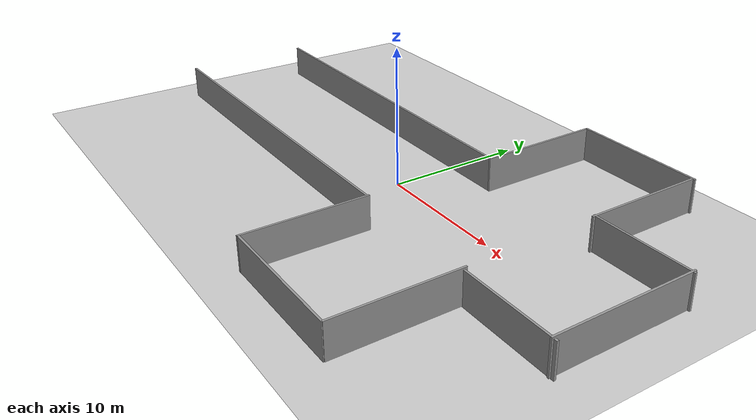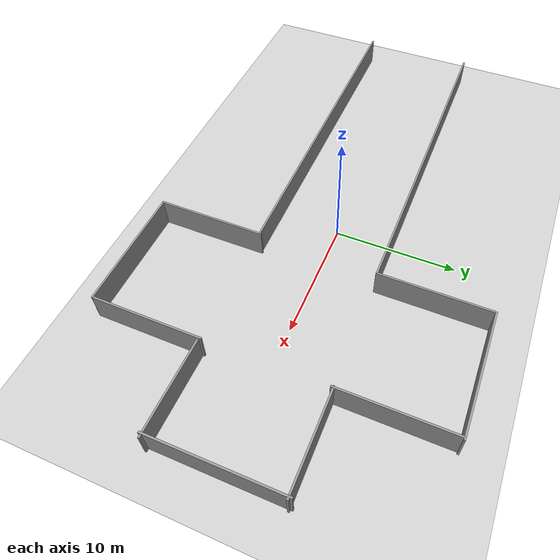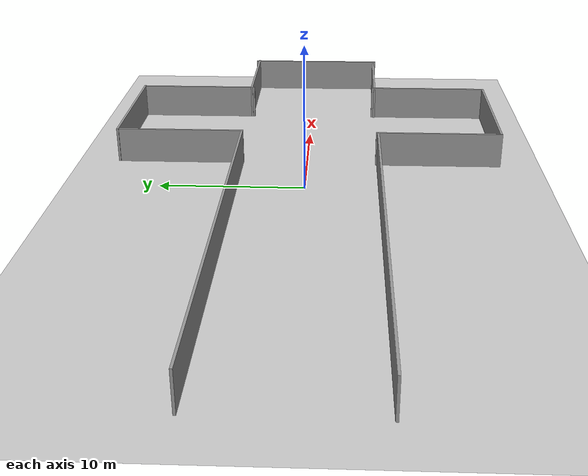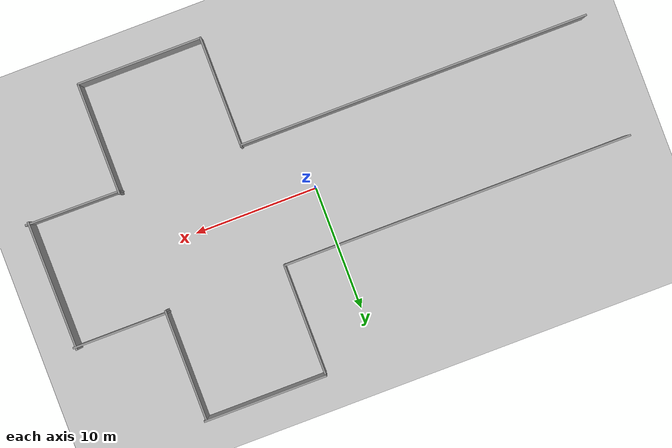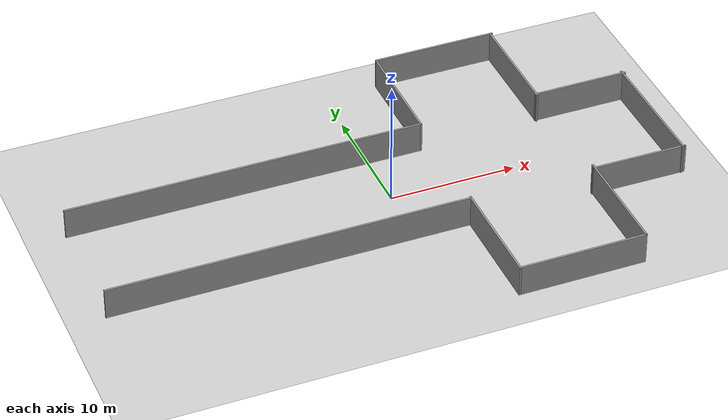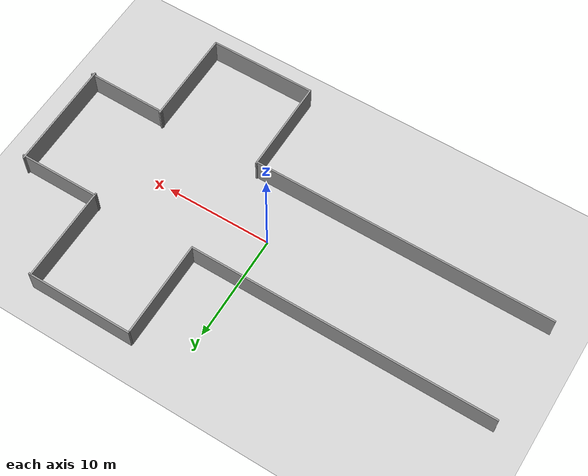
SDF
<sdf version="1.7">
 <world name="default">
  <light name="sun" type="directional">
   <pose>0 0 10 0 -0 0</pose>
   <diffuse>0.8 0.8 0.8 1</diffuse>
   <specular>0.2 0.2 0.2 1</specular>
   <attenuation>
    <range>1000</range>
    <constant>0.9</constant>
    <linear>0.01</linear>
    <quadratic>0.001</quadratic>
   </attenuation>
   <direction>-0.5 0.1 -0.9</direction>
   <spot><inner_angle>0</inner_angle><outer_angle>0</outer_angle><falloff>0</falloff></spot>
  </light>
  <model name="ground_plane">
   <static>1</static>
   <link name="link">
    <collision name="collision">
     <geometry><plane><normal>0 0 1</normal><size>100 100</size></plane></geometry>
     <surface><friction><ode><mu>100</mu><mu2>50</mu2></ode></friction></surface>
    </collision>
    <visual name="visual">
     <cast_shadows>0</cast_shadows>
     <geometry><plane><normal>0 0 1</normal><size>100 100</size></plane></geometry>
     <material>
      <script><uri>file://media/materials/scripts/gazebo.material</uri><name>Gazebo/Grey</name></script>
     </material>
    </visual>
   </link>
  </model>
  <gravity>0 0 -9.8</gravity>
  <magnetic_field>6e-06 2.3e-05 -4.2e-05</magnetic_field>
  <atmosphere type="adiabatic"/>
  <physics type="ode">
   <max_step_size>0.001</max_step_size>
   <real_time_factor>1</real_time_factor>
   <real_time_update_rate>1000</real_time_update_rate>
  </physics>
  <scene><ambient>0.4 0.4 0.4 1</ambient><background>0.7 0.7 0.7 1</background><shadows>1</shadows></scene>
  <spherical_coordinates>
   <surface_model>EARTH_WGS84</surface_model>
   <latitude_deg>0</latitude_deg>
   <longitude_deg>0</longitude_deg>
   <elevation>0</elevation>
   <heading_deg>0</heading_deg>
  </spherical_coordinates>
  <model name="T_shape">
   <link name="Wall_10">
    <pose>10.6566 11.3839 0 0 -0 0</pose>
    <visual name="Wall_10_Visual">
     <pose>0 0 1.25 0 -0 0</pose>
     <geometry><box><size>10 0.15 2.5</size></box></geometry>
     <material>
      <script><uri>file://media/materials/scripts/gazebo.material</uri><name>Gazebo/Grey</name></script>
      <ambient>1 1 1 1</ambient>
      <shader type="pixel"/>
     </material>
     <meta><layer>0</layer></meta>
    </visual>
    <collision name="Wall_10_Collision">
     <pose>0 0 1.25 0 -0 0</pose>
     <geometry><box><size>10 0.15 2.5</size></box></geometry>
     <surface>
      <friction>
       <ode><mu>1</mu><mu2>1</mu2><fdir1>0 0 0</fdir1><slip1>0</slip1><slip2>0</slip2></ode>
       <torsional>
        <coefficient>1</coefficient>
        <patch_radius>0</patch_radius>
        <surface_radius>0</surface_radius>
        <use_patch_radius>1</use_patch_radius>
        <ode><slip>0</slip></ode>
       </torsional>
      </friction>
      <bounce><restitution_coefficient>0</restitution_coefficient><threshold>1e+06</threshold></bounce>
      <contact>
       <collide_without_contact>0</collide_without_contact>
       <collide_without_contact_bitmask>1</collide_without_contact_bitmask>
       <collide_bitmask>1</collide_bitmask>
       <ode>
        <soft_cfm>0</soft_cfm>
        <soft_erp>0.2</soft_erp>
        <kp>1e+13</kp>
        <kd>1</kd>
        <max_vel>0.01</max_vel>
        <min_depth>0</min_depth>
       </ode>
       <bullet>
        <split_impulse>1</split_impulse>
        <split_impulse_penetration_threshold>-0.01</split_impulse_penetration_threshold>
        <soft_cfm>0</soft_cfm>
        <soft_erp>0.2</soft_erp>
        <kp>1e+13</kp>
        <kd>1</kd>
       </bullet>
      </contact>
     </surface>
    </collision>
   </link>
   <link name="Wall_10_clone">
    <pose>10.6299 -16.167 0 0 -0 0</pose>
    <visual name="Wall_10_Visual">
     <pose>0 0 1.25 0 -0 0</pose>
     <geometry><box><size>10 0.15 2.5</size></box></geometry>
     <material>
      <script><uri>file://media/materials/scripts/gazebo.material</uri><name>Gazebo/Grey</name></script>
      <ambient>1 1 1 1</ambient>
      <shader type="pixel"/>
     </material>
     <meta><layer>0</layer></meta>
    </visual>
    <collision name="Wall_10_Collision">
     <pose>0 0 1.25 0 -0 0</pose>
     <geometry><box><size>10 0.15 2.5</size></box></geometry>
     <surface>
      <friction>
       <ode><mu>1</mu><mu2>1</mu2><fdir1>0 0 0</fdir1><slip1>0</slip1><slip2>0</slip2></ode>
       <torsional>
        <coefficient>1</coefficient>
        <patch_radius>0</patch_radius>
        <surface_radius>0</surface_radius>
        <use_patch_radius>1</use_patch_radius>
        <ode><slip>0</slip></ode>
       </torsional>
      </friction>
      <bounce><restitution_coefficient>0</restitution_coefficient><threshold>1e+06</threshold></bounce>
      <contact>
       <collide_without_contact>0</collide_without_contact>
       <collide_without_contact_bitmask>1</collide_without_contact_bitmask>
       <collide_bitmask>1</collide_bitmask>
       <ode>
        <soft_cfm>0</soft_cfm>
        <soft_erp>0.2</soft_erp>
        <kp>1e+13</kp>
        <kd>1</kd>
        <max_vel>0.01</max_vel>
        <min_depth>0</min_depth>
       </ode>
       <bullet>
        <split_impulse>1</split_impulse>
        <split_impulse_penetration_threshold>-0.01</split_impulse_penetration_threshold>
        <soft_cfm>0</soft_cfm>
        <soft_erp>0.2</soft_erp>
        <kp>1e+13</kp>
        <kd>1</kd>
       </bullet>
      </contact>
     </surface>
    </collision>
   </link>
   <link name="Wall_11">
    <pose>15.4566 6.8718 0 0 -0 1.5708</pose>
    <inertial>
     <mass>5.7375</mass>
     <inertia><ixx>2.99904</ixx><ixy>0</ixy><ixz>0</ixz><iyy>41.7164</iyy><iyz>0</iyz><izz>38.7389</izz></inertia>
    </inertial>
    <visual name="Wall_11_Visual">
     <pose>0 0 1.25 0 -0 0</pose>
     <geometry><box><size>9 0.15 2.5</size></box></geometry>
     <material>
      <script><uri>file://media/materials/scripts/gazebo.material</uri><name>Gazebo/Grey</name></script>
      <ambient>1 1 1 1</ambient>
      <shader type="pixel"><normal_map>__default__</normal_map></shader>
     </material>
     <meta><layer>0</layer></meta>
    </visual>
    <collision name="Wall_11_Collision">
     <pose>0 0 1.25 0 -0 0</pose>
     <geometry><box><size>9 0.15 2.5</size></box></geometry>
     <surface>
      <friction>
       <ode><mu>1</mu><mu2>1</mu2><fdir1>0 0 0</fdir1><slip1>0</slip1><slip2>0</slip2></ode>
       <torsional>
        <coefficient>1</coefficient>
        <patch_radius>0</patch_radius>
        <surface_radius>0</surface_radius>
        <use_patch_radius>1</use_patch_radius>
        <ode><slip>0</slip></ode>
       </torsional>
      </friction>
      <bounce><restitution_coefficient>0</restitution_coefficient><threshold>1e+06</threshold></bounce>
      <contact>
       <collide_without_contact>0</collide_without_contact>
       <collide_without_contact_bitmask>1</collide_without_contact_bitmask>
       <collide_bitmask>1</collide_bitmask>
       <ode>
        <soft_cfm>0</soft_cfm>
        <soft_erp>0.2</soft_erp>
        <kp>1e+13</kp>
        <kd>1</kd>
        <max_vel>0.01</max_vel>
        <min_depth>0</min_depth>
       </ode>
       <bullet>
        <split_impulse>1</split_impulse>
        <split_impulse_penetration_threshold>-0.01</split_impulse_penetration_threshold>
        <soft_cfm>0</soft_cfm>
        <soft_erp>0.2</soft_erp>
        <kp>1e+13</kp>
        <kd>1</kd>
       </bullet>
      </contact>
     </surface>
    </collision>
   </link>
   <link name="Wall_11_clone">
    <pose>15.5901 -11.6787 0 0 -0 1.5708</pose>
    <inertial>
     <mass>5.7375</mass>
     <inertia><ixx>2.99904</ixx><ixy>0</ixy><ixz>0</ixz><iyy>41.7164</iyy><iyz>0</iyz><izz>38.7389</izz></inertia>
    </inertial>
    <visual name="Wall_11_Visual">
     <pose>0 0 1.25 0 -0 0</pose>
     <geometry><box><size>9 0.15 2.5</size></box></geometry>
     <material>
      <script><uri>file://media/materials/scripts/gazebo.material</uri><name>Gazebo/Grey</name></script>
      <ambient>1 1 1 1</ambient>
      <shader type="pixel"><normal_map>__default__</normal_map></shader>
     </material>
     <meta><layer>0</layer></meta>
    </visual>
    <collision name="Wall_11_Collision">
     <pose>0 0 1.25 0 -0 0</pose>
     <geometry><box><size>9 0.15 2.5</size></box></geometry>
     <surface>
      <friction>
       <ode><mu>1</mu><mu2>1</mu2><fdir1>0 0 0</fdir1><slip1>0</slip1><slip2>0</slip2></ode>
       <torsional>
        <coefficient>1</coefficient>
        <patch_radius>0</patch_radius>
        <surface_radius>0</surface_radius>
        <use_patch_radius>1</use_patch_radius>
        <ode><slip>0</slip></ode>
       </torsional>
      </friction>
      <bounce><restitution_coefficient>0</restitution_coefficient><threshold>1e+06</threshold></bounce>
      <contact>
       <collide_without_contact>0</collide_without_contact>
       <collide_without_contact_bitmask>1</collide_without_contact_bitmask>
       <collide_bitmask>1</collide_bitmask>
       <ode>
        <soft_cfm>0</soft_cfm>
        <soft_erp>0.2</soft_erp>
        <kp>1e+13</kp>
        <kd>1</kd>
        <max_vel>0.01</max_vel>
        <min_depth>0</min_depth>
       </ode>
       <bullet>
        <split_impulse>1</split_impulse>
        <split_impulse_penetration_threshold>-0.01</split_impulse_penetration_threshold>
        <soft_cfm>0</soft_cfm>
        <soft_erp>0.2</soft_erp>
        <kp>1e+13</kp>
        <kd>1</kd>
       </bullet>
      </contact>
     </surface>
    </collision>
   </link>
   <link name="Wall_12">
    <pose>19.1981 2.60037 0 0 -0 0</pose>
    <inertial>
     <inertia><ixx>1.96598</ixx><ixy>0</ixy><ixz>0</ixz><iyy>20.6154</iyy><iyz>0</iyz><izz>18.6635</izz></inertia>
     <mass>3.76114</mass>
    </inertial>
    <visual name="Wall_12_Visual">
     <pose>0 0 1.25 0 -0 0</pose>
     <geometry><box><size>7.71517 0.15 2.5</size></box></geometry>
     <material>
      <script><uri>file://media/materials/scripts/gazebo.material</uri><name>Gazebo/Grey</name></script>
      <ambient>1 1 1 1</ambient>
      <shader type="pixel"><normal_map>__default__</normal_map></shader>
     </material>
     <meta><layer>0</layer></meta>
    </visual>
    <collision name="Wall_12_Collision">
     <pose>0 0 1.25 0 -0 0</pose>
     <geometry><box><size>7.71517 0.15 2.5</size></box></geometry>
     <surface>
      <friction>
       <ode><mu>1</mu><mu2>1</mu2><fdir1>0 0 0</fdir1><slip1>0</slip1><slip2>0</slip2></ode>
       <torsional>
        <coefficient>1</coefficient>
        <patch_radius>0</patch_radius>
        <surface_radius>0</surface_radius>
        <use_patch_radius>1</use_patch_radius>
        <ode><slip>0</slip></ode>
       </torsional>
      </friction>
      <bounce><restitution_coefficient>0</restitution_coefficient><threshold>1e+06</threshold></bounce>
      <contact>
       <collide_without_contact>0</collide_without_contact>
       <collide_without_contact_bitmask>1</collide_without_contact_bitmask>
       <collide_bitmask>1</collide_bitmask>
       <ode>
        <soft_cfm>0</soft_cfm>
        <soft_erp>0.2</soft_erp>
        <kp>1e+13</kp>
        <kd>1</kd>
        <max_vel>0.01</max_vel>
        <min_depth>0</min_depth>
       </ode>
       <bullet>
        <split_impulse>1</split_impulse>
        <split_impulse_penetration_threshold>-0.01</split_impulse_penetration_threshold>
        <soft_cfm>0</soft_cfm>
        <soft_erp>0.2</soft_erp>
        <kp>1e+13</kp>
        <kd>1</kd>
       </bullet>
      </contact>
     </surface>
    </collision>
   </link>
   <link name="Wall_12_clone">
    <pose>22.8533 -2.40842 -0 0 0 -1.56581</pose>
    <inertial>
     <inertia><ixx>2.06304</ixx><ixy>0</ixy><ixz>0</ixz><iyy>38.4892</iyy><iyz>0</iyz><izz>36.441</izz></inertia>
     <mass>3.94684</mass>
    </inertial>
    <visual name="Wall_12_Visual">
     <pose>0 0 1.25 0 -0 0</pose>
     <geometry><box><size>10.5249 0.15 2.5</size></box></geometry>
     <material>
      <script><uri>file://media/materials/scripts/gazebo.material</uri><name>Gazebo/Grey</name></script>
      <ambient>1 1 1 1</ambient>
      <shader type="pixel"><normal_map>__default__</normal_map></shader>
     </material>
     <meta><layer>0</layer></meta>
    </visual>
    <collision name="Wall_12_Collision">
     <pose>0 0 1.25 0 -0 0</pose>
     <geometry><box><size>10.5249 0.15 2.5</size></box></geometry>
     <surface>
      <friction>
       <ode><mu>1</mu><mu2>1</mu2><fdir1>0 0 0</fdir1><slip1>0</slip1><slip2>0</slip2></ode>
       <torsional>
        <coefficient>1</coefficient>
        <patch_radius>0</patch_radius>
        <surface_radius>0</surface_radius>
        <use_patch_radius>1</use_patch_radius>
        <ode><slip>0</slip></ode>
       </torsional>
      </friction>
      <bounce><restitution_coefficient>0</restitution_coefficient><threshold>1e+06</threshold></bounce>
      <contact>
       <collide_without_contact>0</collide_without_contact>
       <collide_without_contact_bitmask>1</collide_without_contact_bitmask>
       <collide_bitmask>1</collide_bitmask>
       <ode>
        <soft_cfm>0</soft_cfm>
        <soft_erp>0.2</soft_erp>
        <kp>1e+13</kp>
        <kd>1</kd>
        <max_vel>0.01</max_vel>
        <min_depth>0</min_depth>
       </ode>
       <bullet>
        <split_impulse>1</split_impulse>
        <split_impulse_penetration_threshold>-0.01</split_impulse_penetration_threshold>
        <soft_cfm>0</soft_cfm>
        <soft_erp>0.2</soft_erp>
        <kp>1e+13</kp>
        <kd>1</kd>
       </bullet>
      </contact>
     </surface>
    </collision>
   </link>
   <link name="Wall_12_clone_0">
    <pose>19.333 -7.44807 -0.117967 0 0 -0.009063</pose>
    <inertial>
     <inertia><ixx>1.96598</ixx><ixy>0</ixy><ixz>0</ixz><iyy>20.6154</iyy><iyz>0</iyz><izz>18.6635</izz></inertia>
     <mass>3.76114</mass>
    </inertial>
    <visual name="Wall_12_Visual">
     <pose>0 0 1.25 0 -0 0</pose>
     <geometry><box><size>7.71517 0.15 2.5</size></box></geometry>
     <material>
      <script><uri>file://media/materials/scripts/gazebo.material</uri><name>Gazebo/Grey</name></script>
      <ambient>1 1 1 1</ambient>
      <shader type="pixel"><normal_map>__default__</normal_map></shader>
     </material>
     <meta><layer>0</layer></meta>
    </visual>
    <collision name="Wall_12_Collision">
     <pose>0 0 1.25 0 -0 0</pose>
     <geometry><box><size>7.71517 0.15 2.5</size></box></geometry>
     <surface>
      <friction>
       <ode><mu>1</mu><mu2>1</mu2><fdir1>0 0 0</fdir1><slip1>0</slip1><slip2>0</slip2></ode>
       <torsional>
        <coefficient>1</coefficient>
        <patch_radius>0</patch_radius>
        <surface_radius>0</surface_radius>
        <use_patch_radius>1</use_patch_radius>
        <ode><slip>0</slip></ode>
       </torsional>
      </friction>
      <bounce><restitution_coefficient>0</restitution_coefficient><threshold>1e+06</threshold></bounce>
      <contact>
       <collide_without_contact>0</collide_without_contact>
       <collide_without_contact_bitmask>1</collide_without_contact_bitmask>
       <collide_bitmask>1</collide_bitmask>
       <ode>
        <soft_cfm>0</soft_cfm>
        <soft_erp>0.2</soft_erp>
        <kp>1e+13</kp>
        <kd>1</kd>
        <max_vel>0.01</max_vel>
        <min_depth>0</min_depth>
       </ode>
       <bullet>
        <split_impulse>1</split_impulse>
        <split_impulse_penetration_threshold>-0.01</split_impulse_penetration_threshold>
        <soft_cfm>0</soft_cfm>
        <soft_erp>0.2</soft_erp>
        <kp>1e+13</kp>
        <kd>1</kd>
       </bullet>
      </contact>
     </surface>
    </collision>
   </link>
   <link name="Wall_8">
    <pose>-8.44337 2.36837 0 0 -0 0</pose>
    <inertial>
     <mass>11.6531</mass>
     <inertia><ixx>6.09119</ixx><ixy>0</ixy><ixz>0</ixz><iyy>781.063</iyy><iyz>0</iyz><izz>775.015</izz></inertia>
    </inertial>
    <visual name="Wall_8_Visual">
     <pose>0 0 1.25 0 -0 0</pose>
     <geometry><box><size>28.25 0.15 2.5</size></box></geometry>
     <material>
      <script><uri>file://media/materials/scripts/gazebo.material</uri><name>Gazebo/Grey</name></script>
      <ambient>1 1 1 1</ambient>
      <shader type="pixel"><normal_map>__default__</normal_map></shader>
     </material>
     <meta><layer>0</layer></meta>
    </visual>
    <collision name="Wall_8_Collision">
     <pose>0 0 1.25 0 -0 0</pose>
     <geometry><box><size>28.25 0.15 2.5</size></box></geometry>
     <surface>
      <friction>
       <ode><mu>1</mu><mu2>1</mu2><fdir1>0 0 0</fdir1><slip1>0</slip1><slip2>0</slip2></ode>
       <torsional>
        <coefficient>1</coefficient>
        <patch_radius>0</patch_radius>
        <surface_radius>0</surface_radius>
        <use_patch_radius>1</use_patch_radius>
        <ode><slip>0</slip></ode>
       </torsional>
      </friction>
      <bounce><restitution_coefficient>0</restitution_coefficient><threshold>1e+06</threshold></bounce>
      <contact>
       <collide_without_contact>0</collide_without_contact>
       <collide_without_contact_bitmask>1</collide_without_contact_bitmask>
       <collide_bitmask>1</collide_bitmask>
       <ode>
        <soft_cfm>0</soft_cfm>
        <soft_erp>0.2</soft_erp>
        <kp>1e+13</kp>
        <kd>1</kd>
        <max_vel>0.01</max_vel>
        <min_depth>0</min_depth>
       </ode>
       <bullet>
        <split_impulse>1</split_impulse>
        <split_impulse_penetration_threshold>-0.01</split_impulse_penetration_threshold>
        <soft_cfm>0</soft_cfm>
        <soft_erp>0.2</soft_erp>
        <kp>1e+13</kp>
        <kd>1</kd>
       </bullet>
      </contact>
     </surface>
    </collision>
   </link>
   <link name="Wall_8_clone">
    <pose>-8.53053 -7.42807 0 0 -0 0</pose>
    <inertial>
     <mass>11.6531</mass>
     <inertia><ixx>6.09119</ixx><ixy>0</ixy><ixz>0</ixz><iyy>781.063</iyy><iyz>0</iyz><izz>775.015</izz></inertia>
    </inertial>
    <visual name="Wall_8_Visual">
     <pose>0 0 1.25 0 -0 0</pose>
     <geometry><box><size>28.25 0.15 2.5</size></box></geometry>
     <material>
      <script><uri>file://media/materials/scripts/gazebo.material</uri><name>Gazebo/Grey</name></script>
      <ambient>1 1 1 1</ambient>
      <shader type="pixel"><normal_map>__default__</normal_map></shader>
     </material>
     <meta><layer>0</layer></meta>
    </visual>
    <collision name="Wall_8_Collision">
     <pose>0 0 1.25 0 -0 0</pose>
     <geometry><box><size>28.25 0.15 2.5</size></box></geometry>
     <surface>
      <friction>
       <ode><mu>1</mu><mu2>1</mu2><fdir1>0 0 0</fdir1><slip1>0</slip1><slip2>0</slip2></ode>
       <torsional>
        <coefficient>1</coefficient>
        <patch_radius>0</patch_radius>
        <surface_radius>0</surface_radius>
        <use_patch_radius>1</use_patch_radius>
        <ode><slip>0</slip></ode>
       </torsional>
      </friction>
      <bounce><restitution_coefficient>0</restitution_coefficient><threshold>1e+06</threshold></bounce>
      <contact>
       <collide_without_contact>0</collide_without_contact>
       <collide_without_contact_bitmask>1</collide_without_contact_bitmask>
       <collide_bitmask>1</collide_bitmask>
       <ode>
        <soft_cfm>0</soft_cfm>
        <soft_erp>0.2</soft_erp>
        <kp>1e+13</kp>
        <kd>1</kd>
        <max_vel>0.01</max_vel>
        <min_depth>0</min_depth>
       </ode>
       <bullet>
        <split_impulse>1</split_impulse>
        <split_impulse_penetration_threshold>-0.01</split_impulse_penetration_threshold>
        <soft_cfm>0</soft_cfm>
        <soft_erp>0.2</soft_erp>
        <kp>1e+13</kp>
        <kd>1</kd>
       </bullet>
      </contact>
     </surface>
    </collision>
   </link>
   <link name="Wall_9">
    <pose>5.71087 6.78603 0 0 0 -1.5708</pose>
    <inertial>
     <mass>5.4</mass>
     <inertia><ixx>2.82262</ixx><ixy>0</ixy><ixz>0</ixz><iyy>39.2625</iyy><iyz>0</iyz><izz>36.4601</izz></inertia>
    </inertial>
    <visual name="Wall_9_Visual">
     <pose>0 0 1.25 0 -0 0</pose>
     <geometry><box><size>9 0.15 2.5</size></box></geometry>
     <material>
      <script><uri>file://media/materials/scripts/gazebo.material</uri><name>Gazebo/Grey</name></script>
      <ambient>1 1 1 1</ambient>
      <shader type="pixel"><normal_map>__default__</normal_map></shader>
     </material>
     <meta><layer>0</layer></meta>
    </visual>
    <collision name="Wall_9_Collision">
     <pose>0 0 1.25 0 -0 0</pose>
     <geometry><box><size>9 0.15 2.5</size></box></geometry>
     <surface>
      <friction>
       <ode><mu>1</mu><mu2>1</mu2><fdir1>0 0 0</fdir1><slip1>0</slip1><slip2>0</slip2></ode>
       <torsional>
        <coefficient>1</coefficient>
        <patch_radius>0</patch_radius>
        <surface_radius>0</surface_radius>
        <use_patch_radius>1</use_patch_radius>
        <ode><slip>0</slip></ode>
       </torsional>
      </friction>
      <bounce><restitution_coefficient>0</restitution_coefficient><threshold>1e+06</threshold></bounce>
      <contact>
       <collide_without_contact>0</collide_without_contact>
       <collide_without_contact_bitmask>1</collide_without_contact_bitmask>
       <collide_bitmask>1</collide_bitmask>
       <ode>
        <soft_cfm>0</soft_cfm>
        <soft_erp>0.2</soft_erp>
        <kp>1e+13</kp>
        <kd>1</kd>
        <max_vel>0.01</max_vel>
        <min_depth>0</min_depth>
       </ode>
       <bullet>
        <split_impulse>1</split_impulse>
        <split_impulse_penetration_threshold>-0.01</split_impulse_penetration_threshold>
        <soft_cfm>0</soft_cfm>
        <soft_erp>0.2</soft_erp>
        <kp>1e+13</kp>
        <kd>1</kd>
       </bullet>
      </contact>
     </surface>
    </collision>
   </link>
   <link name="Wall_9_clone">
    <pose>5.59571 -11.7628 0 0 0 -1.5708</pose>
    <inertial>
     <mass>5.4</mass>
     <inertia><ixx>2.82262</ixx><ixy>0</ixy><ixz>0</ixz><iyy>39.2625</iyy><iyz>0</iyz><izz>36.4601</izz></inertia>
    </inertial>
    <visual name="Wall_9_Visual">
     <pose>0 0 1.25 0 -0 0</pose>
     <geometry><box><size>9 0.15 2.5</size></box></geometry>
     <material>
      <script><uri>file://media/materials/scripts/gazebo.material</uri><name>Gazebo/Grey</name></script>
      <ambient>1 1 1 1</ambient>
      <shader type="pixel"><normal_map>__default__</normal_map></shader>
     </material>
     <meta><layer>0</layer></meta>
    </visual>
    <collision name="Wall_9_Collision">
     <pose>0 0 1.25 0 -0 0</pose>
     <geometry><box><size>9 0.15 2.5</size></box></geometry>
     <surface>
      <friction>
       <ode><mu>1</mu><mu2>1</mu2><fdir1>0 0 0</fdir1><slip1>0</slip1><slip2>0</slip2></ode>
       <torsional>
        <coefficient>1</coefficient>
        <patch_radius>0</patch_radius>
        <surface_radius>0</surface_radius>
        <use_patch_radius>1</use_patch_radius>
        <ode><slip>0</slip></ode>
       </torsional>
      </friction>
      <bounce><restitution_coefficient>0</restitution_coefficient><threshold>1e+06</threshold></bounce>
      <contact>
       <collide_without_contact>0</collide_without_contact>
       <collide_without_contact_bitmask>1</collide_without_contact_bitmask>
       <collide_bitmask>1</collide_bitmask>
       <ode>
        <soft_cfm>0</soft_cfm>
        <soft_erp>0.2</soft_erp>
        <kp>1e+13</kp>
        <kd>1</kd>
        <max_vel>0.01</max_vel>
        <min_depth>0</min_depth>
       </ode>
       <bullet>
        <split_impulse>1</split_impulse>
        <split_impulse_penetration_threshold>-0.01</split_impulse_penetration_threshold>
        <soft_cfm>0</soft_cfm>
        <soft_erp>0.2</soft_erp>
        <kp>1e+13</kp>
        <kd>1</kd>
       </bullet>
      </contact>
     </surface>
    </collision>
   </link>
   <static>1</static>
   <pose>-1.35929 2.35534 0 0 -0 0</pose>
  </model>
 </world>
</sdf>
